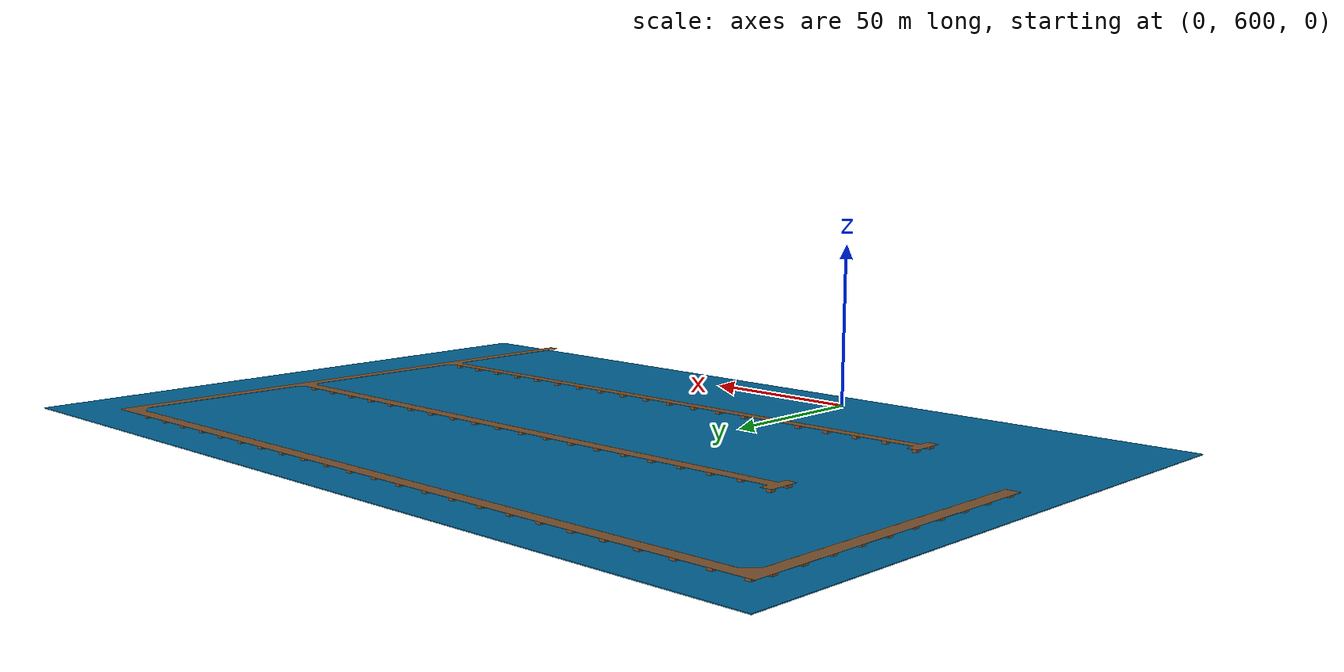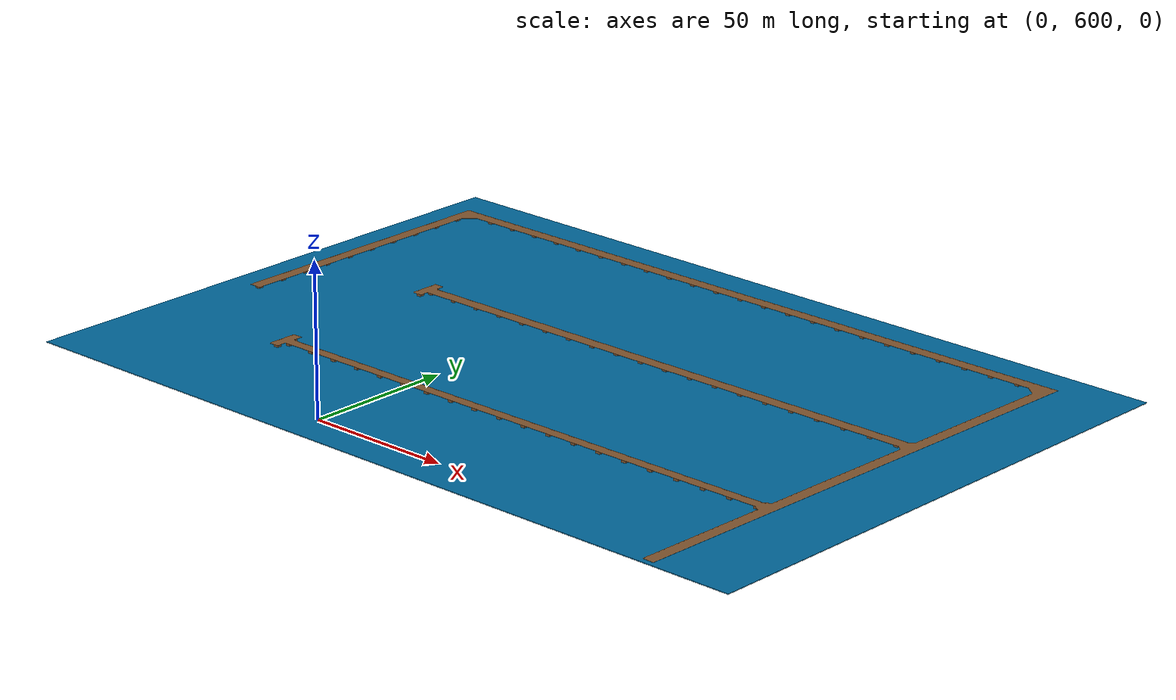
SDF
<?xml version='1.0'?>
<sdf version='1.7'>
  <model name='world_zona_C_environment'>
    <static>true</static>
    <pose>0 0 0 0 0 0</pose>

    <include>
      <uri>/marinero_simulations/models/Marina_Zona_C</uri>
      <pose>140.340000 587.600000 0.08 0 0 0</pose>
    </include>

    <include>
      <uri>/marinero_simulations/models/sea_plane_C</uri>
      <pose>31.2865 682.602 0 0 0 -0.0005</pose>
    </include>

  </model>
</sdf>

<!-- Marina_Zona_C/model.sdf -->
<sdf version='1.7'>
  <model name='Marina_Zona_C'>
    <link name='link'>
      <self_collide>0</self_collide>
      <gravity>1</gravity>
      <inertial>
        <mass>50000</mass>
        <pose>0 0 0 0 -0 0</pose>
        <inertia>
          <ixx>0</ixx>
          <ixy>0</ixy>
          <ixz>0</ixz>
          <iyy>0</iyy>
          <iyz>0</iyz>
          <izz>0</izz>
        </inertia>
      </inertial>
      <enable_wind>0</enable_wind>
      <kinematic>0</kinematic>
      <pose>0 0 0 0 0 0</pose>
      <visual name='visual'>
        <pose>0 0 0 0 0 0</pose>
        <geometry>
          <mesh>
            <uri>/marinero_simulations/models/Marina_Zona_C/meshes/Marina_Zona_C.stl</uri>
            <scale>1 1 1</scale>
          </mesh>
        </geometry>
        <material>
          <script>
            <uri>file://media/materials/scripts/gazebo.material</uri>
            <name>Gazebo/Brown</name>
          </script>
          <ambient>0.278 0.129 0.02 1</ambient>
          <diffuse>0.278 0.129 0.02 1</diffuse>
          <specular>0.278 0.129 0.02 1</specular>
          <emissive>0 0 0 1</emissive>
          <shader type='pixel'>
            <normal_map>__default__</normal_map>
          </shader>
        </material>
        <transparency>0</transparency>
        <cast_shadows>1</cast_shadows>
      </visual>
      <collision name='collision'>
        <laser_retro>0</laser_retro>
        <max_contacts>10</max_contacts>
        <pose>0 0 0 0 0 0</pose>
        <geometry>
          <mesh>
            <uri>/marinero_simulations/models/Marina_Zona_C/meshes/Marina_Zona_C.stl</uri>
            <scale>1 1 1</scale>
          </mesh>
        </geometry>
        <surface>
          <friction>
            <ode>
              <mu>1.0</mu>
              <mu2>1.0</mu2>
              <fdir1>0 0 0</fdir1>
              <slip1>0.001</slip1>
              <slip2>1e-05</slip2>
            </ode>
            <torsional>
              <coefficient>1</coefficient>
              <patch_radius>0</patch_radius>
              <surface_radius>0</surface_radius>
              <use_patch_radius>1</use_patch_radius>
              <ode>
                <slip>0</slip>
              </ode>
            </torsional>
          </friction>
          <bounce>
            <restitution_coefficient>0</restitution_coefficient>
            <threshold>1000</threshold>
          </bounce>
          <contact>
            <collide_without_contact>0</collide_without_contact>
            <collide_without_contact_bitmask>0</collide_without_contact_bitmask>
            <collide_bitmask>1</collide_bitmask>
            <ode>
              <soft_cfm>0</soft_cfm>
              <soft_erp>0.2</soft_erp>
              <kp>1e+13</kp>
              <kd>10</kd>
              <max_vel>0.01</max_vel>
              <min_depth>0.001</min_depth>
            </ode>
            <bullet>
              <split_impulse>1</split_impulse>
              <split_impulse_penetration_threshold>-0.01</split_impulse_penetration_threshold>
              <soft_cfm>0</soft_cfm>
              <soft_erp>0.2</soft_erp>
              <kp>1e+11</kp>
              <kd>100</kd>
            </bullet>
          </contact>
        </surface>
      </collision>
    </link>
    <static>1</static>
    <allow_auto_disable>1</allow_auto_disable>
  </model>
</sdf>

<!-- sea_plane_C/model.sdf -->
<sdf version='1.7'>
  <model name='sea_plane_C'>
    <link name='link'>
      <self_collide>0</self_collide>
      <enable_wind>0</enable_wind>
      <kinematic>0</kinematic>
      <pose>0 0 0 0 -0 0</pose>
      <gravity>1</gravity>
      <inertial>
        <mass>5.27875e+06</mass>
        <pose>0 0 0 0 -0 0</pose>
        <inertia>
          <ixx>4.66688e+09</ixx>
          <ixy>0</ixy>
          <ixz>0</ixz>
          <iyy>1.84866e+10</iyy>
          <iyz>0</iyz>
          <izz>2.31535e+10</izz>
        </inertia>
      </inertial>
      <visual name='visual'>
        <cast_shadows>0</cast_shadows>
        <geometry>
          <box>
            <size>280 190 0.25</size>
          </box>
        </geometry>
        <material>
          <script>
            <uri>model://sea_plane/materials/scripts</uri>
            <uri>model://sea_plane/materials/textures</uri>
            <name>vrc/sea</name>
          </script>
          <shader type='pixel'>
            <normal_map>__default__</normal_map>
          </shader>
          <ambient>0 0.4 0.6 0</ambient>
          <diffuse>0 0.4 0.6 1</diffuse>
          <specular>0.2 0.2 0.2 1</specular>
          <emissive>0 0 0 1</emissive>
        </material>
        <pose>0 0 0 0 -0 0</pose>
        <transparency>0</transparency>
      </visual>
      <collision name='collision'>
        <laser_retro>0</laser_retro>
        <max_contacts>10</max_contacts>
        <pose>0 0 0 0 -0 0</pose>
        <geometry>
          <box>
            <size>280 190 0.25</size>
          </box>
        </geometry>
        <surface>
          <friction>
            <ode>
              <mu>1</mu>
              <mu2>1</mu2>
              <fdir1>0 0 0</fdir1>
              <slip1>0</slip1>
              <slip2>0</slip2>
            </ode>
            <torsional>
              <coefficient>1</coefficient>
              <patch_radius>0</patch_radius>
              <surface_radius>0</surface_radius>
              <use_patch_radius>1</use_patch_radius>
              <ode>
                <slip>0</slip>
              </ode>
            </torsional>
          </friction>
          <bounce>
            <restitution_coefficient>0</restitution_coefficient>
            <threshold>1e+06</threshold>
          </bounce>
          <contact>
            <collide_without_contact>0</collide_without_contact>
            <collide_without_contact_bitmask>1</collide_without_contact_bitmask>
            <collide_bitmask>1</collide_bitmask>
            <ode>
              <soft_cfm>0</soft_cfm>
              <soft_erp>0.2</soft_erp>
              <kp>1e+13</kp>
              <kd>1</kd>
              <max_vel>0.01</max_vel>
              <min_depth>0</min_depth>
            </ode>
            <bullet>
              <split_impulse>1</split_impulse>
              <split_impulse_penetration_threshold>-0.01</split_impulse_penetration_threshold>
              <soft_cfm>0</soft_cfm>
              <soft_erp>0.2</soft_erp>
              <kp>1e+13</kp>
              <kd>1</kd>
            </bullet>
          </contact>
        </surface>
      </collision>
    </link>
    <static>1</static>
    <allow_auto_disable>1</allow_auto_disable>
  </model>
</sdf>
